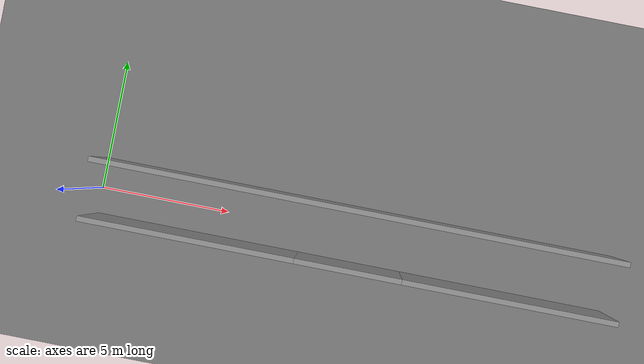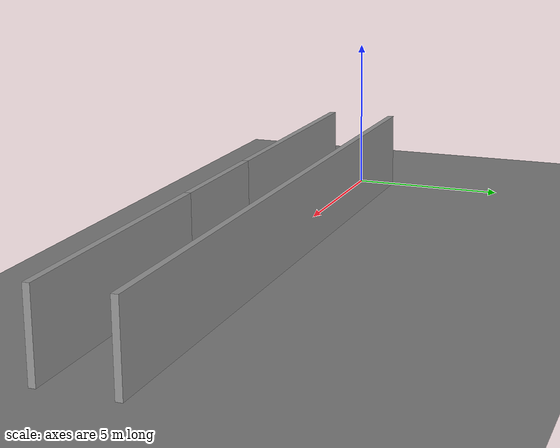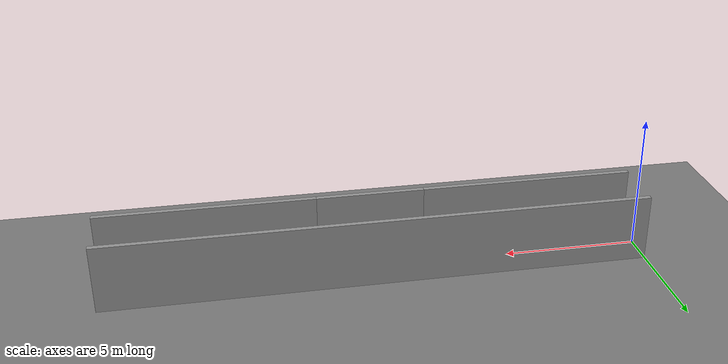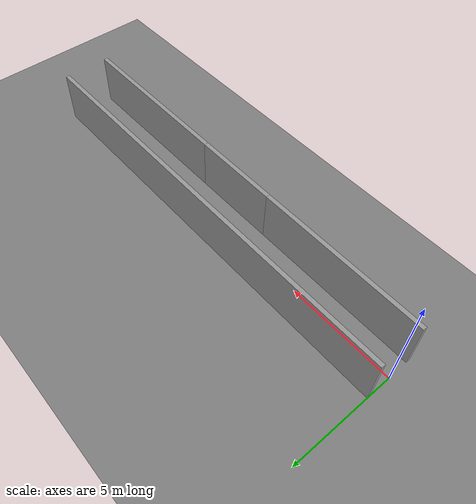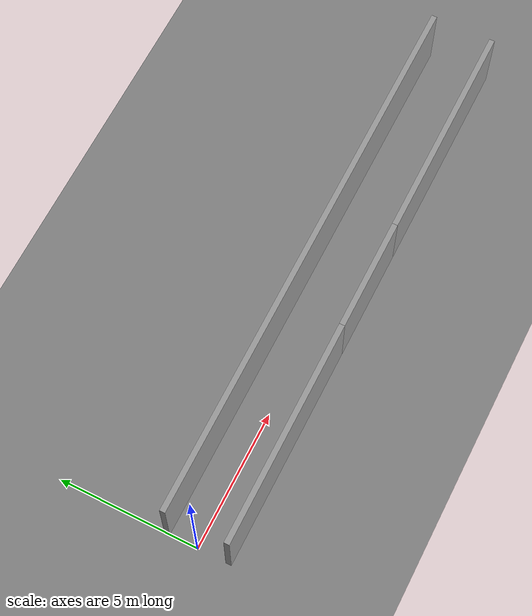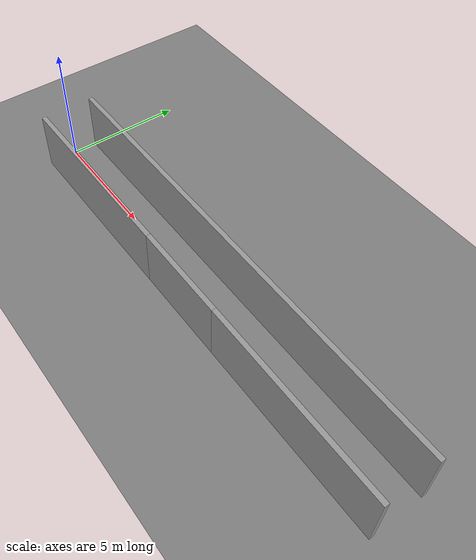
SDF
<?xml version="1.0" ?>
<sdf version="1.8">
  <world name="degenerate_corridor">
    <physics name="1ms" type="ignored">
      <max_step_size>0.001</max_step_size>
      <real_time_factor>1.0</real_time_factor>
    </physics>

    <plugin filename="ignition-gazebo-physics-system" name="ignition::gazebo::systems::Physics"/>
    <plugin filename="ignition-gazebo-user-commands-system" name="ignition::gazebo::systems::UserCommands"/>
    <plugin filename="ignition-gazebo-scene-broadcaster-system" name="ignition::gazebo::systems::SceneBroadcaster"/>
    <!-- CPU Sensor System -->
    <plugin filename="ignition-gazebo-sensors-system" name="ignition::gazebo::systems::Sensors">
    </plugin>

    <light type="directional" name="sun">
      <cast_shadows>false</cast_shadows>
      <pose>0 0 10 0 0 0</pose>
      <diffuse>0.8 0.8 0.8 1</diffuse>
      <specular>0.2 0.2 0.2 1</specular>
      <direction>-0.5 0.1 -0.9</direction>
    </light>

    <!-- Ground Plane -->
    <model name="ground_plane">
      <static>true</static>
      <link name="link">
        <collision name="collision">
          <geometry><plane><normal>0 0 1</normal><size>50 50</size></plane></geometry>
        </collision>
        <visual name="visual">
          <geometry><plane><normal>0 0 1</normal><size>50 50</size></plane></geometry>
          <material><ambient>0.5 0.5 0.5 1</ambient><diffuse>0.5 0.5 0.5 1</diffuse></material>
        </visual>
      </link>
    </model>

    <!-- Left Wall (Static, 20m) -->
    <model name="left_wall">
      <static>true</static>
      <pose>10.0 1.1 1.25 0 0 0</pose>
      <link name="link">
        <collision name="col"><geometry><box><size>20.0 0.2 2.5</size></box></geometry></collision>
        <visual name="vis">
          <geometry><box><size>20.0 0.2 2.5</size></box></geometry>
          <material><ambient>0.6 0.6 0.6 1</ambient><diffuse>0.6 0.6 0.6 1</diffuse></material>
        </visual>
      </link>
    </model>

    <!-- Right Wall Part 1 (0 to 8m) -->
    <model name="right_wall_p1">
      <static>true</static>
      <pose>4.0 -1.1 1.25 0 0 0</pose>
      <link name="link">
        <collision name="col"><geometry><box><size>8.0 0.2 2.5</size></box></geometry></collision>
        <visual name="vis"><geometry><box><size>8.0 0.2 2.5</size></box></geometry>
        <material><ambient>0.6 0.6 0.6 1</ambient><diffuse>0.6 0.6 0.6 1</diffuse></material></visual>
      </link>
    </model>

    <!-- Shifting Wall Segment (8m to 12m, shifts across Y axis) -->
    <model name="shifting_wall">
      <static>false</static>
      <pose>10.0 -1.1 1.25 0 0 0</pose>
      <link name="shifting_link">
        <inertial>
          <mass>50.0</mass>
          <inertia><ixx>10</ixx><ixy>0</ixy><ixz>0</ixz><iyy>10</iyy><iyz>0</iyz><izz>10</izz></inertia>
        </inertial>
        <collision name="col"><geometry><box><size>4.0 0.2 2.5</size></box></geometry></collision>
        <visual name="vis"><geometry><box><size>4.0 0.2 2.5</size></box></geometry>
        <material><ambient>0.6 0.6 0.6 1</ambient><diffuse>0.6 0.6 0.6 1</diffuse></material></visual>
      </link>
      <joint name="prismatic_y_joint" type="prismatic">
        <parent>world</parent>
        <child>shifting_link</child>
        <axis>
          <xyz>0 1 0</xyz>
          <limit><lower>-2.0</lower><upper>2.0</upper><effort>10000</effort></limit>
        </axis>
      </joint>
      <plugin filename="ignition-gazebo-joint-position-controller-system" name="ignition::gazebo::systems::JointPositionController">
        <joint_name>prismatic_y_joint</joint_name>
        <topic>/model/shifting_wall/joint_cmd</topic>
        <p_gain>10000</p_gain>
        <i_gain>100</i_gain>
        <d_gain>1000</d_gain>
      </plugin>
    </model>

    <!-- Right Wall Part 2 (12 to 20m) -->
    <model name="right_wall_p2">
      <static>true</static>
      <pose>16.0 -1.1 1.25 0 0 0</pose>
      <link name="link">
        <collision name="col"><geometry><box><size>8.0 0.2 2.5</size></box></geometry></collision>
        <visual name="vis"><geometry><box><size>8.0 0.2 2.5</size></box></geometry>
        <material><ambient>0.6 0.6 0.6 1</ambient><diffuse>0.6 0.6 0.6 1</diffuse></material></visual>
      </link>
    </model>
  </world>
</sdf>
